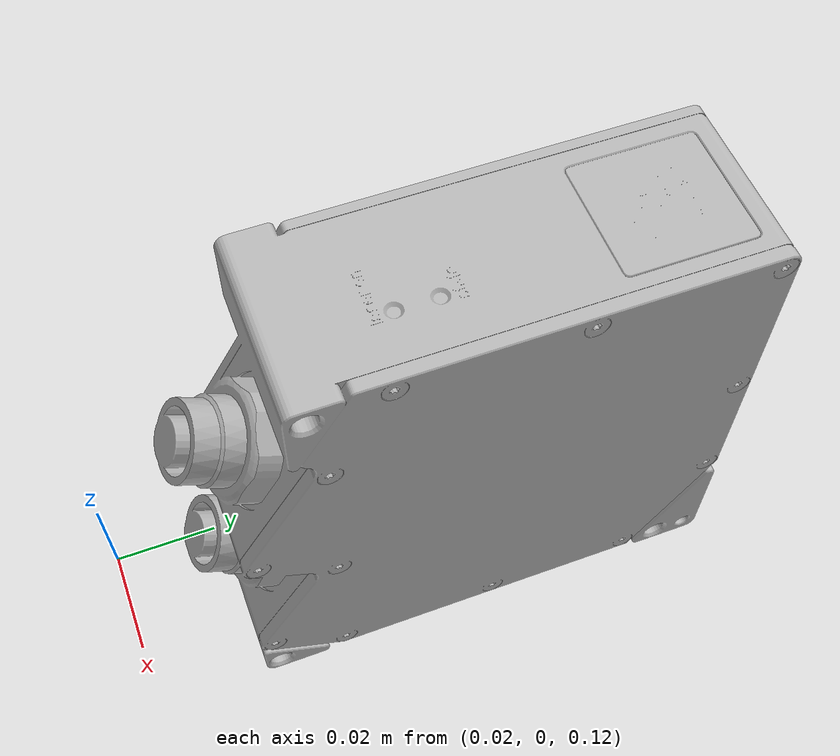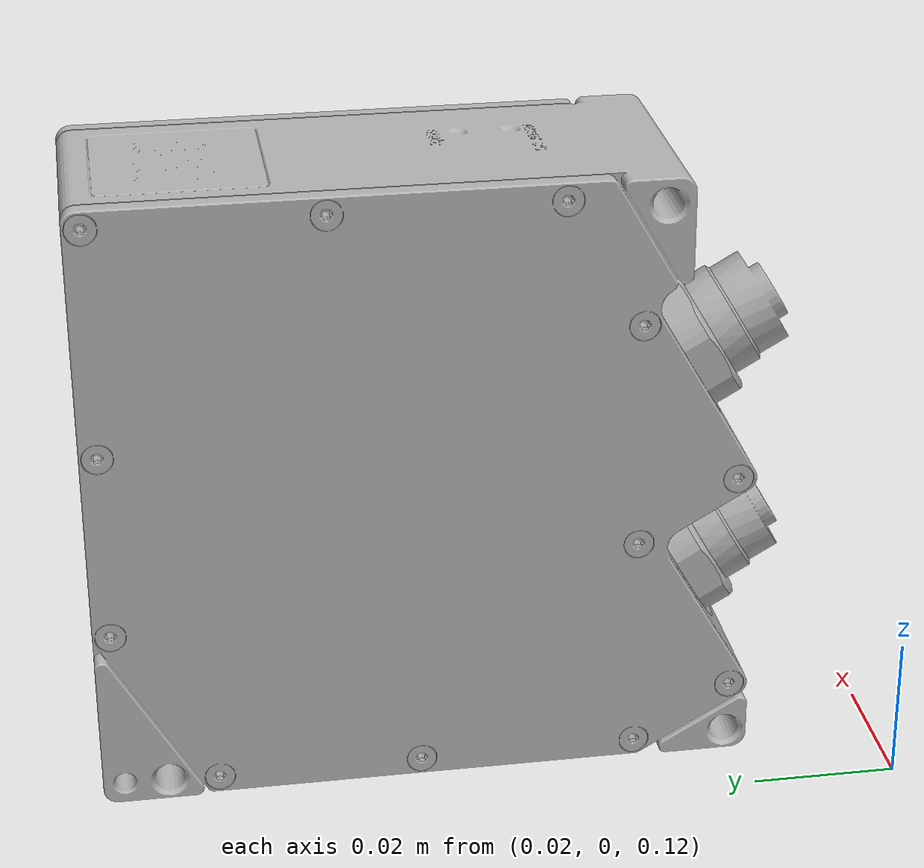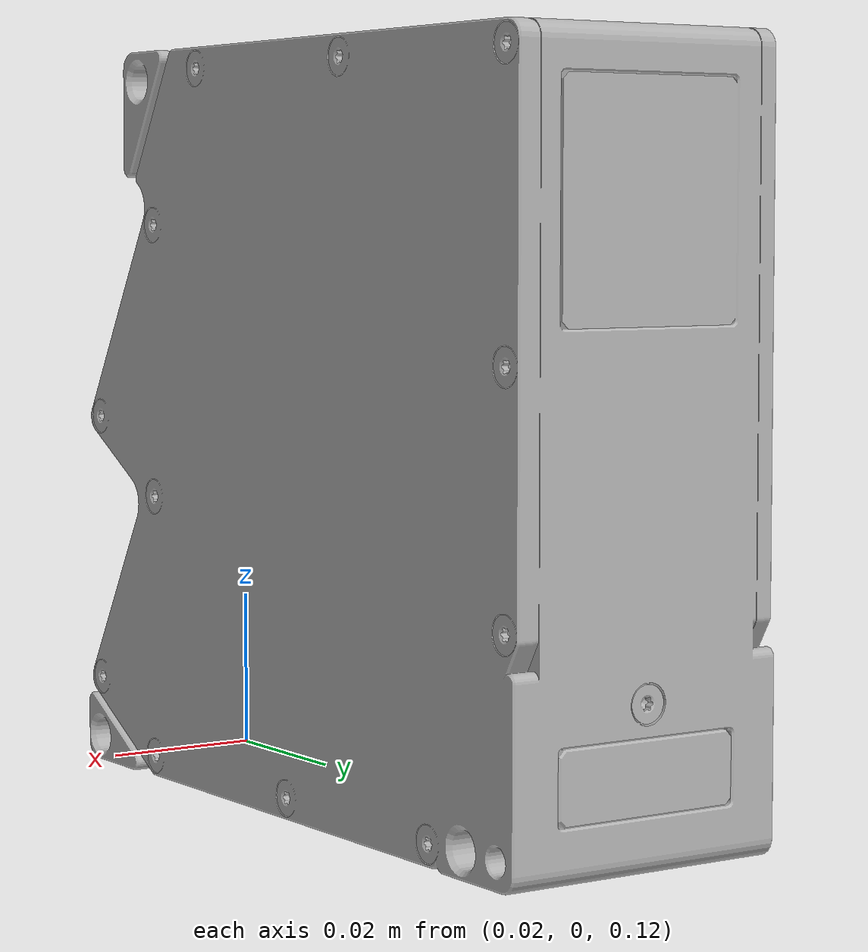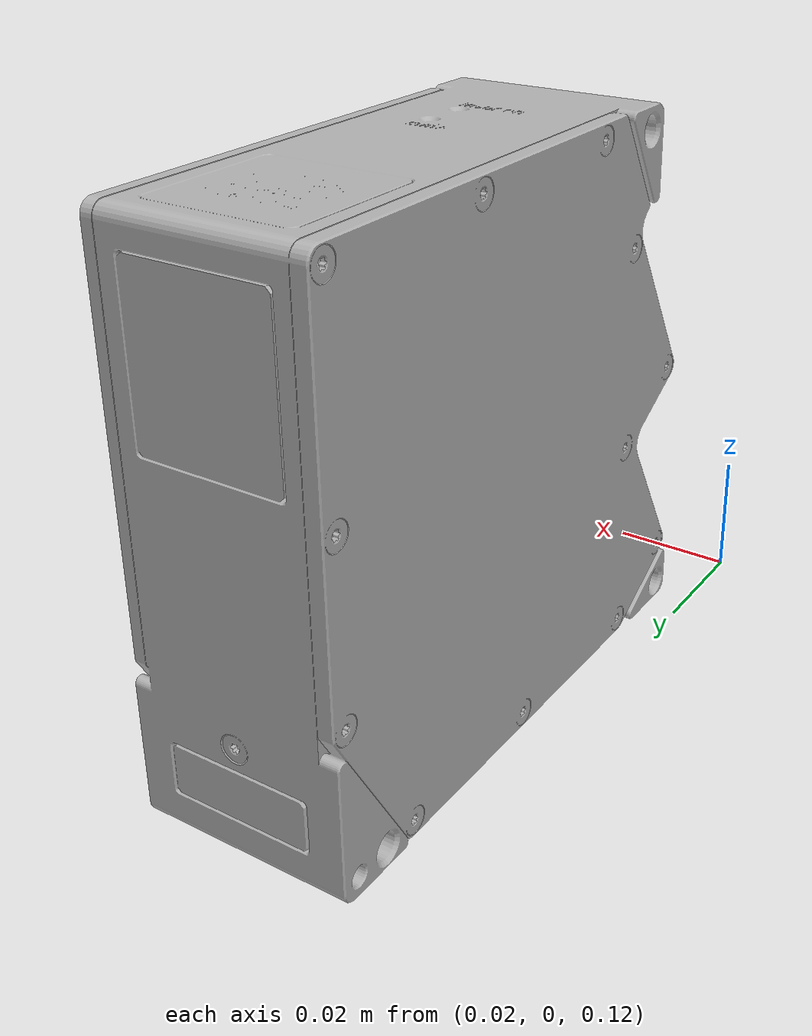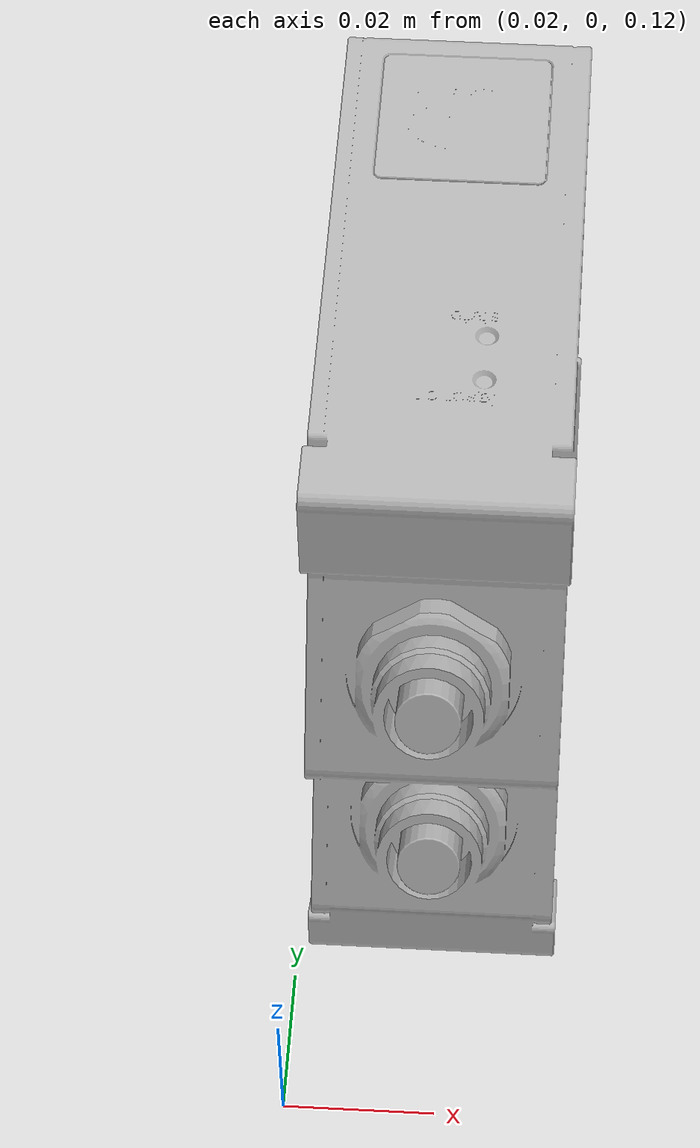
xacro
<?xml version="1.0"?>
<robot xmlns:xacro="http://www.ros.org/wiki/xacro" name="scanCONTROL_2900-50" >

  <xacro:include filename="$(find microepsilon_scancontrol)/description/urdf/scanCONTROL_2900-50_macro.urdf.xacro" />

  <link name="base_link"/>

  <!-- sensor -->
  <xacro:scanCONTROL_2900-50 prefix="scanCONTROL_2900-50_" parent="base_link">
    <origin xyz="0.0383464 0.109996 0.135064" rpy="${radians(0)} ${radians(180)} ${radians(180)}" />
  </xacro:scanCONTROL_2900-50>

</robot>

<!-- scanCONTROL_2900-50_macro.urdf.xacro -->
<robot xmlns:xacro="http://www.ros.org/wiki/xacro">
  <xacro:macro name="scanCONTROL_2900-50" params="parent prefix *origin">

    <joint name="${prefix}scanner_joint" type="fixed">
      <xacro:insert_block name="origin" />
      <parent link="${parent}"/>
      <child link="${prefix}scanner_link" />
    </joint>

    <link name="${prefix}scanner_link">
      <inertial>
        <mass value="0.01" />
        <origin xyz="0 0 0" />
        <inertia ixx="0.001" ixy="0.0" ixz="0.0" iyy="0.001" iyz="0.0" izz="0.001" />
      </inertial>
      <visual>
        <geometry>
          <mesh filename="package://microepsilon_scancontrol/description/meshes/scanCONTROL_LLT26xx_29xx.dae" scale="0.001 0.001 0.001" />
        </geometry>
      </visual>
      <collision>
        <geometry>
          <mesh filename="package://microepsilon_scancontrol/description/meshes/scanCONTROL_LLT26xx_29xx.stl" scale="0.001 0.001 0.001" />
        </geometry>
      </collision>
    </link>

    <joint name="${prefix}scanner_laser_joint" type="fixed">
        <origin xyz="0 0 0" rpy="${radians(90)} ${radians(0)} ${radians(0)}" />
        <parent link="${prefix}scanner_link"/>
        <child link="${prefix}scanner_laser_link" />
    </joint>

    <link name="${prefix}scanner_laser_link" />

  </xacro:macro>
</robot>
